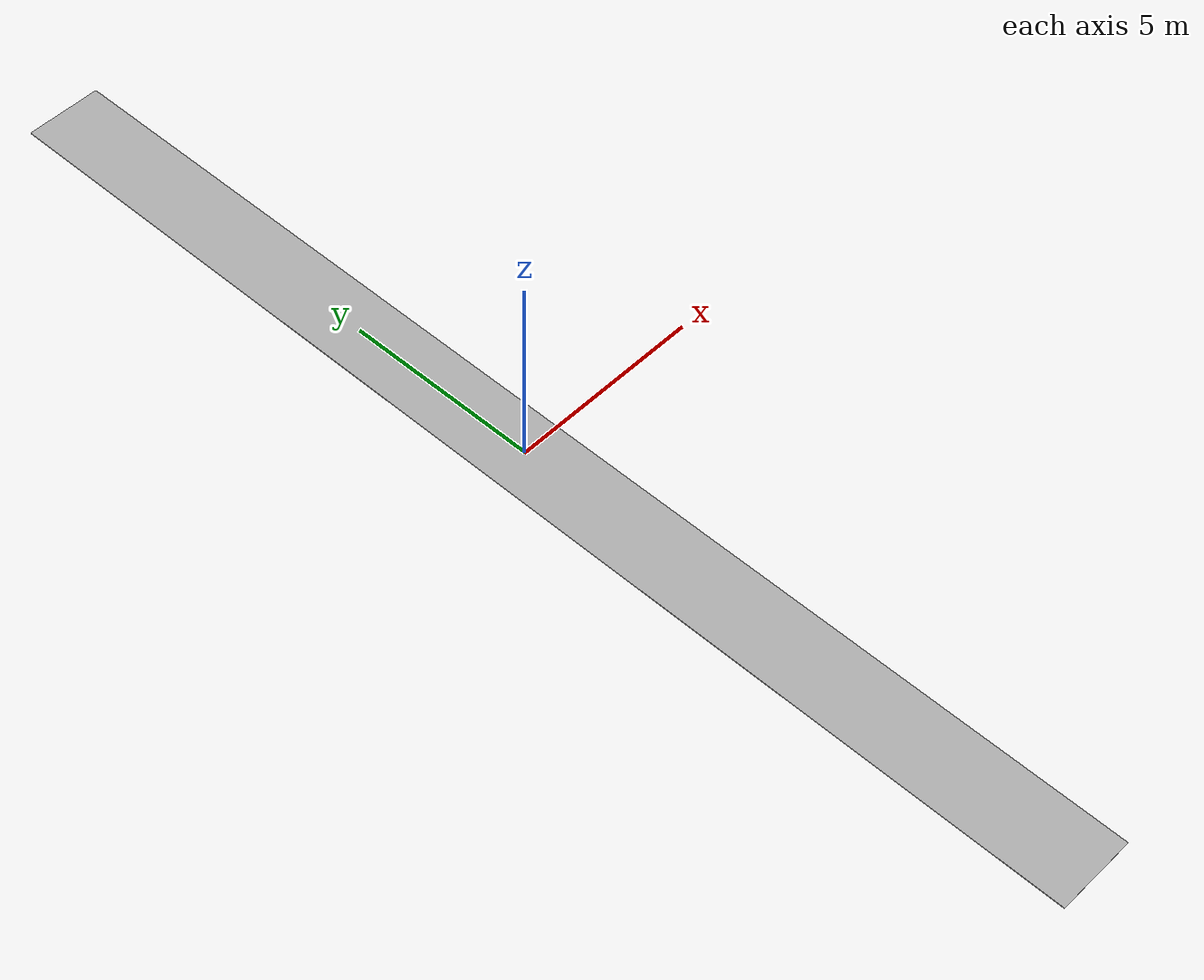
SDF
<?xml version='1.0'?>
<sdf version='1.6'>
  <model name="black_tile_w200_h3000">
      <static>true</static>
      <link name='link'>
        <collision name='collision'>
          <geometry>
         <box>
            <size>2 30 0.01</size>
          </box>
          </geometry>
          <surface>
            <friction>
              <ode>
                <mu>100</mu>
                <mu2>50</mu2>
              </ode>
            </friction>
          </surface>
        </collision>
        <visual name='visual'>
          <cast_shadows>0</cast_shadows>
          <geometry>
         <box>
            <size>2 30 0.01</size>
          </box>
          </geometry>
          <material>
            <script>
              <uri>model://black_tile_w200_h3000/materials/scripts</uri>
              <uri>model://black_tile_w200_h3000/materials/textures/</uri>
              <name>black_tile_w200_h3000/Image</name>
            </script>
          </material>
        </visual>
      </link>
  </model>
</sdf>
